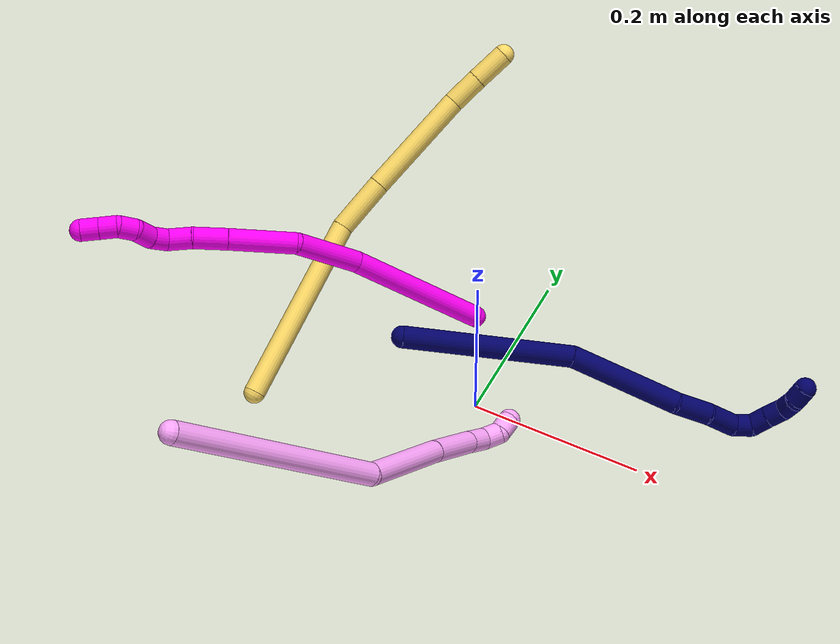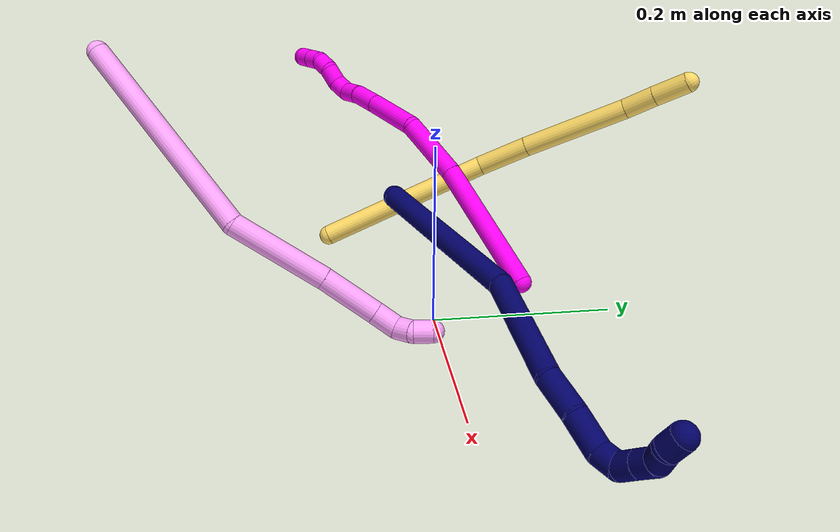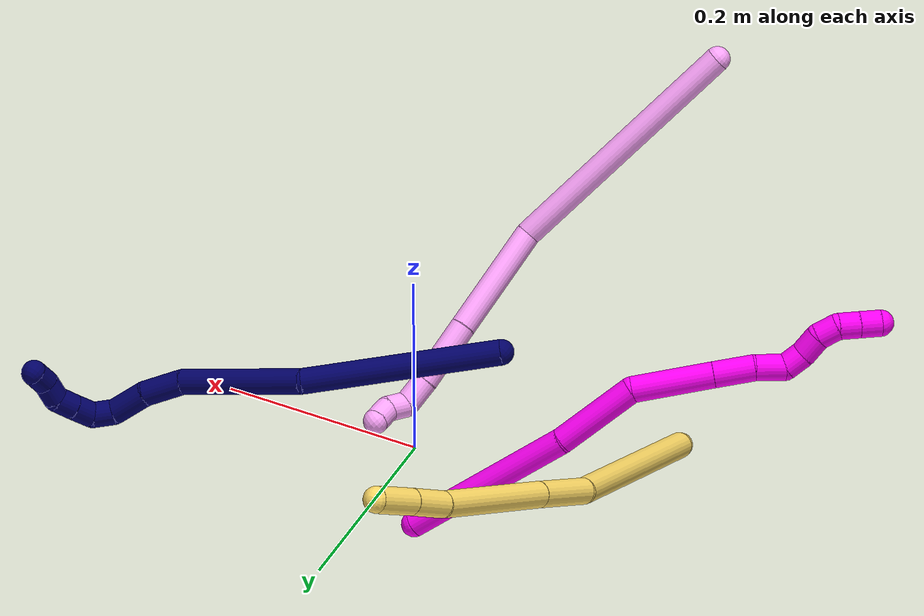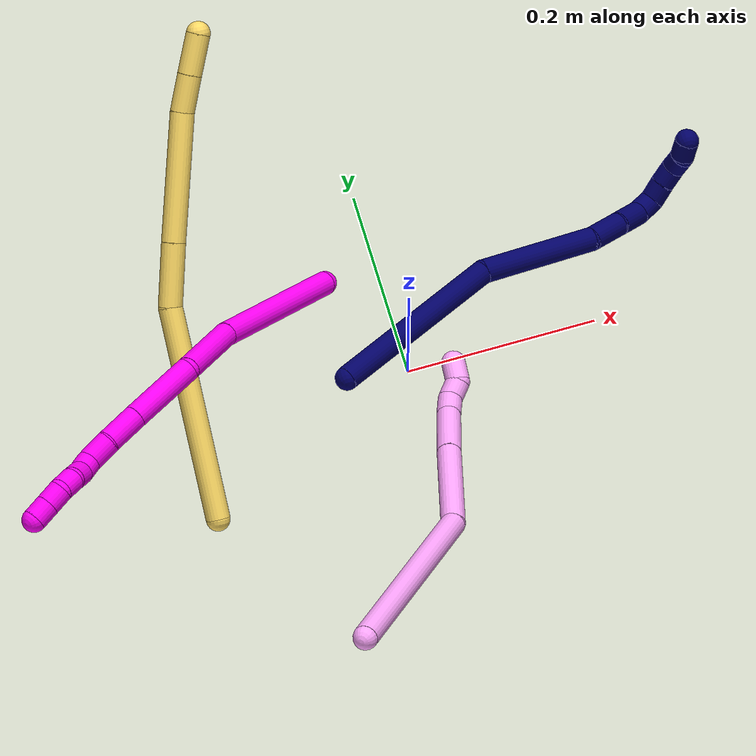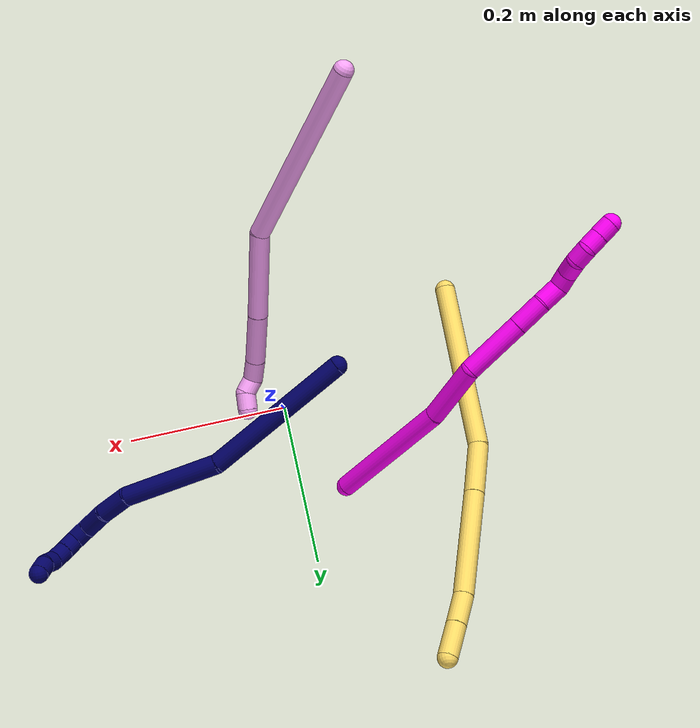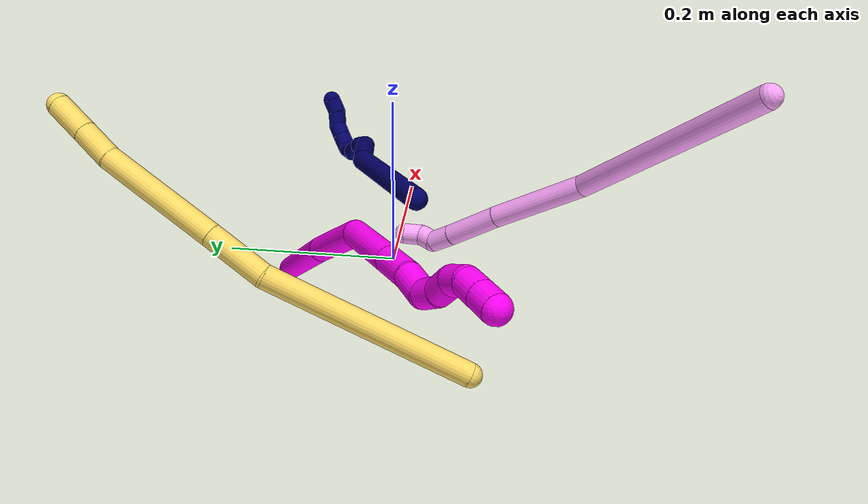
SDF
<sdf version="1.7">
 <world name="default">
  <model name="photoneo_s_sensor">
   <static>1</static>
   <pose>0 0 2 1.57079 1.57079 3.14159</pose>
   <link name="link">
    <inertial><mass>0.1</mass></inertial>
    <sensor name="sensor" type="depth">
     <update_rate>30</update_rate>
     <camera>
      <horizontal_fov>1.22</horizontal_fov>
      <image><width>1920</width><height>1200</height><format>B8G8R8</format></image>
      <clip><near>0.1</near><far>4</far></clip>
      <depth_camera><output>points</output></depth_camera>
     </camera>
     <plugin name="camera_plugin" filename="libgazebo_ros_depth_camera.so">
      <baseline>0.2</baseline>
      <alwaysOn>1</alwaysOn>
      <updateRate>0.0</updateRate>
      <cameraName>camera_ir</cameraName>
      <imageTopicName>/camera/color/image_raw</imageTopicName>
      <cameraInfoTopicName>/camera/color/camera_info</cameraInfoTopicName>
      <depthImageTopicName>/camera/depth/image_raw</depthImageTopicName>
      <depthImageCameraInfoTopicName>/camera/depth/camera_info</depthImageCameraInfoTopicName>
      <pointCloudTopicName>/camera/depth/points</pointCloudTopicName>
      <frameName>fr_optical</frameName>
      <pointCloudCutoff>0.1</pointCloudCutoff>
      <pointCloudCutoffMax>2.0</pointCloudCutoffMax>
      <distortionK1>0</distortionK1>
      <distortionK2>0</distortionK2>
      <distortionK3>0</distortionK3>
      <distortionT1>0</distortionT1>
      <distortionT2>0</distortionT2>
      <CxPrime>0</CxPrime>
      <Cx>0</Cx>
      <Cy>0</Cy>
      <focalLength>0</focalLength>
      <hackBaseline>0</hackBaseline>
     </plugin>
    </sensor>
   </link>
  </model>
  <model name="bin">
   <static>1</static>
   <link name="bottom">
    <collision name="collision-bottom">
     <pose>0 0 -0.01 0 -0 0</pose>
     <geometry><box><size>0.8 0.6 0.02</size></box></geometry>
     <surface>
      <friction><ode><mu>100</mu><mu2>100</mu2></ode></friction>
      <contact><collide_bitmask>65535</collide_bitmask></contact>
     </surface>
    </collision>
   </link>
   <link name="west_wall">
    <collision name="collision-west_wall">
     <pose>-0.41 0 0.1 0 -0 0</pose>
     <geometry><box><size>0.02 0.6 0.2</size></box></geometry>
     <surface>
      <friction><ode><mu>100</mu><mu2>100</mu2></ode></friction>
      <contact><collide_bitmask>65535</collide_bitmask></contact>
     </surface>
    </collision>
   </link>
   <link name="east_wall">
    <collision name="collision-east_wall">
     <pose>0.41 0 0.1 0 -0 0</pose>
     <geometry><box><size>0.02 0.6 0.2</size></box></geometry>
     <surface>
      <friction><ode><mu>100</mu><mu2>100</mu2></ode></friction>
      <contact><collide_bitmask>65535</collide_bitmask></contact>
     </surface>
    </collision>
   </link>
   <link name="south_wall">
    <collision name="collision-south_wall">
     <pose>0 -0.31 0.1 0 -0 0</pose>
     <geometry><box><size>0.8 0.02 0.2</size></box></geometry>
     <surface>
      <friction><ode><mu>100</mu><mu2>100</mu2></ode></friction>
      <contact><collide_bitmask>65535</collide_bitmask></contact>
     </surface>
    </collision>
   </link>
   <link name="north_wall">
    <collision name="collision-north_wall">
     <pose>0 0.31 0.1 0 -0 0</pose>
     <geometry><box><size>0.8 0.02 0.2</size></box></geometry>
     <surface>
      <friction><ode><mu>100</mu><mu2>100</mu2></ode></friction>
      <contact><collide_bitmask>65535</collide_bitmask></contact>
     </surface>
    </collision>
   </link>
  </model>
  <model name="4">
   <static>0</static>
   <link name="4">
    <collision name="collision-cylinder-e_1_1_4">
     <pose>-0.005483 -0.000521 -0.126102 3.13746 -0.043451 -2.95201</pose>
     <geometry><cylinder><radius>0.0125</radius><length>0.252445</length></cylinder></geometry>
     <surface>
      <friction><ode><mu>1.16</mu><mu2>1.16</mu2><slip1>0</slip1><slip2>0</slip2></ode></friction>
      <contact><ode><kp>1e+06</kp><kd>1</kd><max_vel>0</max_vel><min_depth>0.001</min_depth></ode></contact>
     </surface>
    </collision>
    <visual name="visual-cylinder-e_1_1_4">
     <pose>-0.005483 -0.000521 -0.126102 3.13746 -0.043451 -2.95201</pose>
     <geometry><cylinder><radius>0.0125</radius><length>0.252445</length></cylinder></geometry>
     <material><ambient>1 0.65098 0.996078 1</ambient></material>
    </visual>
    <collision name="collision-cylinder-e_2_4_5">
     <pose>-0.018392 0.021445 -0.303106 -2.7256 -0.132668 0.609894</pose>
     <geometry><cylinder><radius>0.0125</radius><length>0.11228</length></cylinder></geometry>
     <surface>
      <friction><ode><mu>1.16</mu><mu2>1.16</mu2><slip1>0</slip1><slip2>0</slip2></ode></friction>
      <contact><ode><kp>1e+06</kp><kd>1</kd><max_vel>0</max_vel><min_depth>0.001</min_depth></ode></contact>
     </surface>
    </collision>
    <visual name="visual-cylinder-e_2_4_5">
     <pose>-0.018392 0.021445 -0.303106 -2.7256 -0.132668 0.609894</pose>
     <geometry><cylinder><radius>0.0125</radius><length>0.11228</length></cylinder></geometry>
     <material><ambient>1 0.65098 0.996078 1</ambient></material>
    </visual>
    <collision name="collision-cylinder-e_3_5_6">
     <pose>-0.030745 0.055436 -0.384094 -2.7764 -0.151776 0.781223</pose>
     <geometry><cylinder><radius>0.0125</radius><length>0.065173</length></cylinder></geometry>
     <surface>
      <friction><ode><mu>1.16</mu><mu2>1.16</mu2><slip1>0</slip1><slip2>0</slip2></ode></friction>
      <contact><ode><kp>1e+06</kp><kd>1</kd><max_vel>0</max_vel><min_depth>0.001</min_depth></ode></contact>
     </surface>
    </collision>
    <visual name="visual-cylinder-e_3_5_6">
     <pose>-0.030745 0.055436 -0.384094 -2.7764 -0.151776 0.781223</pose>
     <geometry><cylinder><radius>0.0125</radius><length>0.065173</length></cylinder></geometry>
     <material><ambient>1 0.65098 0.996078 1</ambient></material>
    </visual>
    <collision name="collision-cylinder-e_4_6_7">
     <pose>-0.037119 0.071513 -0.427608 -2.81327 -0.101668 0.595982</pose>
     <geometry><cylinder><radius>0.0125</radius><length>0.028515</length></cylinder></geometry>
     <surface>
      <friction><ode><mu>1.16</mu><mu2>1.16</mu2><slip1>0</slip1><slip2>0</slip2></ode></friction>
      <contact><ode><kp>1e+06</kp><kd>1</kd><max_vel>0</max_vel><min_depth>0.001</min_depth></ode></contact>
     </surface>
    </collision>
    <visual name="visual-cylinder-e_4_6_7">
     <pose>-0.037119 0.071513 -0.427608 -2.81327 -0.101668 0.595982</pose>
     <geometry><cylinder><radius>0.0125</radius><length>0.028515</length></cylinder></geometry>
     <material><ambient>1 0.65098 0.996078 1</ambient></material>
    </visual>
    <collision name="collision-cylinder-e_5_7_8">
     <pose>-0.033024 0.079371 -0.448753 -2.73929 0.583867 -1.94927</pose>
     <geometry><cylinder><radius>0.0125</radius><length>0.020108</length></cylinder></geometry>
     <surface>
      <friction><ode><mu>1.16</mu><mu2>1.16</mu2><slip1>0</slip1><slip2>0</slip2></ode></friction>
      <contact><ode><kp>1e+06</kp><kd>1</kd><max_vel>0</max_vel><min_depth>0.001</min_depth></ode></contact>
     </surface>
    </collision>
    <visual name="visual-cylinder-e_5_7_8">
     <pose>-0.033024 0.079371 -0.448753 -2.73929 0.583867 -1.94927</pose>
     <geometry><cylinder><radius>0.0125</radius><length>0.020108</length></cylinder></geometry>
     <material><ambient>1 0.65098 0.996078 1</ambient></material>
    </visual>
    <collision name="collision-cylinder-e_6_8_2">
     <pose>-0.025759 0.090886 -0.463152 -2.2526 0.161044 -0.335672</pose>
     <geometry><cylinder><radius>0.0125</radius><length>0.021479</length></cylinder></geometry>
     <surface>
      <friction><ode><mu>1.16</mu><mu2>1.16</mu2><slip1>0</slip1><slip2>0</slip2></ode></friction>
      <contact><ode><kp>1e+06</kp><kd>1</kd><max_vel>0</max_vel><min_depth>0.001</min_depth></ode></contact>
     </surface>
    </collision>
    <visual name="visual-cylinder-e_6_8_2">
     <pose>-0.025759 0.090886 -0.463152 -2.2526 0.161044 -0.335672</pose>
     <geometry><cylinder><radius>0.0125</radius><length>0.021479</length></cylinder></geometry>
     <material><ambient>1 0.65098 0.996078 1</ambient></material>
    </visual>
    <collision name="collision-sphere-2">
     <pose>-0.024037 0.099117 -0.469832 0 -0 0</pose>
     <geometry><sphere><radius>0.0125</radius></sphere></geometry>
     <surface>
      <friction><ode><mu>1.16</mu><mu2>1.16</mu2><slip1>0</slip1><slip2>0</slip2></ode></friction>
      <contact><ode><kp>1e+06</kp><kd>1</kd><max_vel>0</max_vel><min_depth>0.001</min_depth></ode></contact>
     </surface>
    </collision>
    <visual name="visual-sphere-2">
     <pose>-0.024037 0.099117 -0.469832 0 -0 0</pose>
     <geometry><sphere><radius>0.0125</radius></sphere></geometry>
     <material><ambient>1 0.65098 0.996078 1</ambient></material>
    </visual>
    <collision name="collision-sphere-4">
     <pose>-0.010966 -0.001042 -0.252205 0 -0 0</pose>
     <geometry><sphere><radius>0.0125</radius></sphere></geometry>
     <surface>
      <friction><ode><mu>1.16</mu><mu2>1.16</mu2><slip1>0</slip1><slip2>0</slip2></ode></friction>
      <contact><ode><kp>1e+06</kp><kd>1</kd><max_vel>0</max_vel><min_depth>0.001</min_depth></ode></contact>
     </surface>
    </collision>
    <visual name="visual-sphere-4">
     <pose>-0.010966 -0.001042 -0.252205 0 -0 0</pose>
     <geometry><sphere><radius>0.0125</radius></sphere></geometry>
     <material><ambient>1 0.65098 0.996078 1</ambient></material>
    </visual>
    <collision name="collision-sphere-1">
     <geometry><sphere><radius>0.0125</radius></sphere></geometry>
     <surface>
      <friction><ode><mu>1.16</mu><mu2>1.16</mu2><slip1>0</slip1><slip2>0</slip2></ode></friction>
      <contact><ode><kp>1e+06</kp><kd>1</kd><max_vel>0</max_vel><min_depth>0.001</min_depth></ode></contact>
     </surface>
    </collision>
    <visual name="visual-sphere-1">
     <geometry><sphere><radius>0.0125</radius></sphere></geometry>
     <material><ambient>1 0.65098 0.996078 1</ambient></material>
    </visual>
    <collision name="collision-sphere-8">
     <pose>-0.027481 0.082655 -0.456472 0 -0 0</pose>
     <geometry><sphere><radius>0.0125</radius></sphere></geometry>
     <surface>
      <friction><ode><mu>1.16</mu><mu2>1.16</mu2><slip1>0</slip1><slip2>0</slip2></ode></friction>
      <contact><ode><kp>1e+06</kp><kd>1</kd><max_vel>0</max_vel><min_depth>0.001</min_depth></ode></contact>
     </surface>
    </collision>
    <visual name="visual-sphere-8">
     <pose>-0.027481 0.082655 -0.456472 0 -0 0</pose>
     <geometry><sphere><radius>0.0125</radius></sphere></geometry>
     <material><ambient>1 0.65098 0.996078 1</ambient></material>
    </visual>
    <collision name="collision-sphere-5">
     <pose>-0.025818 0.043932 -0.354006 0 -0 0</pose>
     <geometry><sphere><radius>0.0125</radius></sphere></geometry>
     <surface>
      <friction><ode><mu>1.16</mu><mu2>1.16</mu2><slip1>0</slip1><slip2>0</slip2></ode></friction>
      <contact><ode><kp>1e+06</kp><kd>1</kd><max_vel>0</max_vel><min_depth>0.001</min_depth></ode></contact>
     </surface>
    </collision>
    <visual name="visual-sphere-5">
     <pose>-0.025818 0.043932 -0.354006 0 -0 0</pose>
     <geometry><sphere><radius>0.0125</radius></sphere></geometry>
     <material><ambient>1 0.65098 0.996078 1</ambient></material>
    </visual>
    <collision name="collision-sphere-6">
     <pose>-0.035672 0.066939 -0.414182 0 -0 0</pose>
     <geometry><sphere><radius>0.0125</radius></sphere></geometry>
     <surface>
      <friction><ode><mu>1.16</mu><mu2>1.16</mu2><slip1>0</slip1><slip2>0</slip2></ode></friction>
      <contact><ode><kp>1e+06</kp><kd>1</kd><max_vel>0</max_vel><min_depth>0.001</min_depth></ode></contact>
     </surface>
    </collision>
    <visual name="visual-sphere-6">
     <pose>-0.035672 0.066939 -0.414182 0 -0 0</pose>
     <geometry><sphere><radius>0.0125</radius></sphere></geometry>
     <material><ambient>1 0.65098 0.996078 1</ambient></material>
    </visual>
    <collision name="collision-sphere-7">
     <pose>-0.038566 0.076087 -0.441034 0 -0 0</pose>
     <geometry><sphere><radius>0.0125</radius></sphere></geometry>
     <surface>
      <friction><ode><mu>1.16</mu><mu2>1.16</mu2><slip1>0</slip1><slip2>0</slip2></ode></friction>
      <contact><ode><kp>1e+06</kp><kd>1</kd><max_vel>0</max_vel><min_depth>0.001</min_depth></ode></contact>
     </surface>
    </collision>
    <visual name="visual-sphere-7">
     <pose>-0.038566 0.076087 -0.441034 0 -0 0</pose>
     <geometry><sphere><radius>0.0125</radius></sphere></geometry>
     <material><ambient>1 0.65098 0.996078 1</ambient></material>
    </visual>
    <inertial>
     <pose>-0.015457 0.022953 -0.244128 0 -0 0</pose>
     <mass>0.5</mass>
     <inertia>
      <ixx>-0.001373</ixx>
      <ixy>0</ixy>
      <ixz>0</ixz>
      <iyy>0.001061</iyy>
      <iyz>0</iyz>
      <izz>-1.4e-05</izz>
     </inertia>
    </inertial>
   </link>
   <pose>-0.149545 -0.356191 0.278467 0.496873 -0.81776 0.166486</pose>
  </model>
  <model name="5">
   <static>0</static>
   <link name="5">
    <collision name="collision-cylinder-e_1_1_4">
     <pose>0.002308 0.015967 0.109147 -0.14526 0.02092 -0.001522</pose>
     <geometry><cylinder><radius>0.0125</radius><length>0.220666</length></cylinder></geometry>
     <surface>
      <friction><ode><mu>1.16</mu><mu2>1.16</mu2><slip1>0</slip1><slip2>0</slip2></ode></friction>
      <contact><ode><kp>1e+06</kp><kd>1</kd><max_vel>0</max_vel><min_depth>0.001</min_depth></ode></contact>
     </surface>
    </collision>
    <visual name="visual-cylinder-e_1_1_4">
     <pose>0.002308 0.015967 0.109147 -0.14526 0.02092 -0.001522</pose>
     <geometry><cylinder><radius>0.0125</radius><length>0.220666</length></cylinder></geometry>
     <material><ambient>1 0.858824 0.4 1</ambient></material>
    </visual>
    <collision name="collision-cylinder-e_2_4_5">
     <pose>0.011823 0.03047 0.250419 0.045551 0.220478 0.005043</pose>
     <geometry><cylinder><radius>0.0125</radius><length>0.065912</length></cylinder></geometry>
     <surface>
      <friction><ode><mu>1.16</mu><mu2>1.16</mu2><slip1>0</slip1><slip2>0</slip2></ode></friction>
      <contact><ode><kp>1e+06</kp><kd>1</kd><max_vel>0</max_vel><min_depth>0.001</min_depth></ode></contact>
     </surface>
    </collision>
    <visual name="visual-cylinder-e_2_4_5">
     <pose>0.011823 0.03047 0.250419 0.045551 0.220478 0.005043</pose>
     <geometry><cylinder><radius>0.0125</radius><length>0.065912</length></cylinder></geometry>
     <material><ambient>1 0.858824 0.4 1</ambient></material>
    </visual>
    <collision name="collision-cylinder-e_3_5_6">
     <pose>0.035341 0.026884 0.346502 0.033154 0.249561 0.004159</pose>
     <geometry><cylinder><radius>0.0125</radius><length>0.132078</length></cylinder></geometry>
     <surface>
      <friction><ode><mu>1.16</mu><mu2>1.16</mu2><slip1>0</slip1><slip2>0</slip2></ode></friction>
      <contact><ode><kp>1e+06</kp><kd>1</kd><max_vel>0</max_vel><min_depth>0.001</min_depth></ode></contact>
     </surface>
    </collision>
    <visual name="visual-cylinder-e_3_5_6">
     <pose>0.035341 0.026884 0.346502 0.033154 0.249561 0.004159</pose>
     <geometry><cylinder><radius>0.0125</radius><length>0.132078</length></cylinder></geometry>
     <material><ambient>1 0.858824 0.4 1</ambient></material>
    </visual>
    <collision name="collision-cylinder-e_4_6_7">
     <pose>0.057473 0.02143 0.428778 0.180007 0.303067 0.02756</pose>
     <geometry><cylinder><radius>0.0125</radius><length>0.039016</length></cylinder></geometry>
     <surface>
      <friction><ode><mu>1.16</mu><mu2>1.16</mu2><slip1>0</slip1><slip2>0</slip2></ode></friction>
      <contact><ode><kp>1e+06</kp><kd>1</kd><max_vel>0</max_vel><min_depth>0.001</min_depth></ode></contact>
     </surface>
    </collision>
    <visual name="visual-cylinder-e_4_6_7">
     <pose>0.057473 0.02143 0.428778 0.180007 0.303067 0.02756</pose>
     <geometry><cylinder><radius>0.0125</radius><length>0.039016</length></cylinder></geometry>
     <material><ambient>1 0.858824 0.4 1</ambient></material>
    </visual>
    <collision name="collision-cylinder-e_5_7_2">
     <pose>0.070056 0.014714 0.466864 0.169484 0.325157 0.027865</pose>
     <geometry><cylinder><radius>0.0125</radius><length>0.042328</length></cylinder></geometry>
     <surface>
      <friction><ode><mu>1.16</mu><mu2>1.16</mu2><slip1>0</slip1><slip2>0</slip2></ode></friction>
      <contact><ode><kp>1e+06</kp><kd>1</kd><max_vel>0</max_vel><min_depth>0.001</min_depth></ode></contact>
     </surface>
    </collision>
    <visual name="visual-cylinder-e_5_7_2">
     <pose>0.070056 0.014714 0.466864 0.169484 0.325157 0.027865</pose>
     <geometry><cylinder><radius>0.0125</radius><length>0.042328</length></cylinder></geometry>
     <material><ambient>1 0.858824 0.4 1</ambient></material>
    </visual>
    <collision name="collision-sphere-2">
     <pose>0.076817 0.011331 0.486632 0 -0 0</pose>
     <geometry><sphere><radius>0.0125</radius></sphere></geometry>
     <surface>
      <friction><ode><mu>1.16</mu><mu2>1.16</mu2><slip1>0</slip1><slip2>0</slip2></ode></friction>
      <contact><ode><kp>1e+06</kp><kd>1</kd><max_vel>0</max_vel><min_depth>0.001</min_depth></ode></contact>
     </surface>
    </collision>
    <visual name="visual-sphere-2">
     <pose>0.076817 0.011331 0.486632 0 -0 0</pose>
     <geometry><sphere><radius>0.0125</radius></sphere></geometry>
     <material><ambient>1 0.858824 0.4 1</ambient></material>
    </visual>
    <collision name="collision-sphere-7">
     <pose>0.063295 0.018096 0.447096 0 -0 0</pose>
     <geometry><sphere><radius>0.0125</radius></sphere></geometry>
     <surface>
      <friction><ode><mu>1.16</mu><mu2>1.16</mu2><slip1>0</slip1><slip2>0</slip2></ode></friction>
      <contact><ode><kp>1e+06</kp><kd>1</kd><max_vel>0</max_vel><min_depth>0.001</min_depth></ode></contact>
     </surface>
    </collision>
    <visual name="visual-sphere-7">
     <pose>0.063295 0.018096 0.447096 0 -0 0</pose>
     <geometry><sphere><radius>0.0125</radius></sphere></geometry>
     <material><ambient>1 0.858824 0.4 1</ambient></material>
    </visual>
    <collision name="collision-sphere-6">
     <pose>0.051651 0.024763 0.41046 0 -0 0</pose>
     <geometry><sphere><radius>0.0125</radius></sphere></geometry>
     <surface>
      <friction><ode><mu>1.16</mu><mu2>1.16</mu2><slip1>0</slip1><slip2>0</slip2></ode></friction>
      <contact><ode><kp>1e+06</kp><kd>1</kd><max_vel>0</max_vel><min_depth>0.001</min_depth></ode></contact>
     </surface>
    </collision>
    <visual name="visual-sphere-6">
     <pose>0.051651 0.024763 0.41046 0 -0 0</pose>
     <geometry><sphere><radius>0.0125</radius></sphere></geometry>
     <material><ambient>1 0.858824 0.4 1</ambient></material>
    </visual>
    <collision name="collision-sphere-5">
     <pose>0.019031 0.029006 0.282544 0 -0 0</pose>
     <geometry><sphere><radius>0.0125</radius></sphere></geometry>
     <surface>
      <friction><ode><mu>1.16</mu><mu2>1.16</mu2><slip1>0</slip1><slip2>0</slip2></ode></friction>
      <contact><ode><kp>1e+06</kp><kd>1</kd><max_vel>0</max_vel><min_depth>0.001</min_depth></ode></contact>
     </surface>
    </collision>
    <visual name="visual-sphere-5">
     <pose>0.019031 0.029006 0.282544 0 -0 0</pose>
     <geometry><sphere><radius>0.0125</radius></sphere></geometry>
     <material><ambient>1 0.858824 0.4 1</ambient></material>
    </visual>
    <collision name="collision-sphere-1">
     <geometry><sphere><radius>0.0125</radius></sphere></geometry>
     <surface>
      <friction><ode><mu>1.16</mu><mu2>1.16</mu2><slip1>0</slip1><slip2>0</slip2></ode></friction>
      <contact><ode><kp>1e+06</kp><kd>1</kd><max_vel>0</max_vel><min_depth>0.001</min_depth></ode></contact>
     </surface>
    </collision>
    <visual name="visual-sphere-1">
     <geometry><sphere><radius>0.0125</radius></sphere></geometry>
     <material><ambient>1 0.858824 0.4 1</ambient></material>
    </visual>
    <collision name="collision-sphere-4">
     <pose>0.004616 0.031934 0.218294 0 -0 0</pose>
     <geometry><sphere><radius>0.0125</radius></sphere></geometry>
     <surface>
      <friction><ode><mu>1.16</mu><mu2>1.16</mu2><slip1>0</slip1><slip2>0</slip2></ode></friction>
      <contact><ode><kp>1e+06</kp><kd>1</kd><max_vel>0</max_vel><min_depth>0.001</min_depth></ode></contact>
     </surface>
    </collision>
    <visual name="visual-sphere-4">
     <pose>0.004616 0.031934 0.218294 0 -0 0</pose>
     <geometry><sphere><radius>0.0125</radius></sphere></geometry>
     <material><ambient>1 0.858824 0.4 1</ambient></material>
    </visual>
    <inertial>
     <pose>0.022328 0.021083 0.245693 0 -0 0</pose>
     <mass>0.5</mass>
     <inertia>
      <ixx>0.00114</ixx>
      <ixy>0</ixy>
      <ixz>0</ixz>
      <iyy>0.001133</iyy>
      <iyz>0</iyz>
      <izz>-0.000161</izz>
     </inertia>
    </inertial>
   </link>
   <pose>-0.231814 -0.104447 0.01149 -0.935418 0.451738 0.206304</pose>
  </model>
  <model name="7">
   <static>0</static>
   <link name="7">
    <collision name="collision-cylinder-e_1_1_4">
     <pose>0.071436 0.042609 0.048639 -0.719416 0.835122 -0.330641</pose>
     <geometry><cylinder><radius>0.0125</radius><length>0.192711</length></cylinder></geometry>
     <surface>
      <friction><ode><mu>1.16</mu><mu2>1.16</mu2><slip1>0</slip1><slip2>0</slip2></ode></friction>
      <contact><ode><kp>1e+06</kp><kd>1</kd><max_vel>0</max_vel><min_depth>0.001</min_depth></ode></contact>
     </surface>
    </collision>
    <visual name="visual-cylinder-e_1_1_4">
     <pose>0.071436 0.042609 0.048639 -0.719416 0.835122 -0.330641</pose>
     <geometry><cylinder><radius>0.0125</radius><length>0.192711</length></cylinder></geometry>
     <material><ambient>0.003922 0 0.403922 1</ambient></material>
    </visual>
    <collision name="collision-cylinder-e_2_4_5">
     <pose>0.191277 0.123834 0.110722 -1.23576 0.869373 -0.637471</pose>
     <geometry><cylinder><radius>0.0125</radius><length>0.126728</length></cylinder></geometry>
     <surface>
      <friction><ode><mu>1.16</mu><mu2>1.16</mu2><slip1>0</slip1><slip2>0</slip2></ode></friction>
      <contact><ode><kp>1e+06</kp><kd>1</kd><max_vel>0</max_vel><min_depth>0.001</min_depth></ode></contact>
     </surface>
    </collision>
    <visual name="visual-cylinder-e_2_4_5">
     <pose>0.191277 0.123834 0.110722 -1.23576 0.869373 -0.637471</pose>
     <geometry><cylinder><radius>0.0125</radius><length>0.126728</length></cylinder></geometry>
     <material><ambient>0.003922 0 0.403922 1</ambient></material>
    </visual>
    <collision name="collision-cylinder-e_3_5_6">
     <pose>0.251902 0.175326 0.133517 -0.94274 0.654847 -0.342834</pose>
     <geometry><cylinder><radius>0.0125</radius><length>0.040126</length></cylinder></geometry>
     <surface>
      <friction><ode><mu>1.16</mu><mu2>1.16</mu2><slip1>0</slip1><slip2>0</slip2></ode></friction>
      <contact><ode><kp>1e+06</kp><kd>1</kd><max_vel>0</max_vel><min_depth>0.001</min_depth></ode></contact>
     </surface>
    </collision>
    <visual name="visual-cylinder-e_3_5_6">
     <pose>0.251902 0.175326 0.133517 -0.94274 0.654847 -0.342834</pose>
     <geometry><cylinder><radius>0.0125</radius><length>0.040126</length></cylinder></geometry>
     <material><ambient>0.003922 0 0.403922 1</ambient></material>
    </visual>
    <collision name="collision-cylinder-e_4_6_7">
     <pose>0.271917 0.20203 0.152695 -0.952908 0.430787 -0.224885</pose>
     <geometry><cylinder><radius>0.0125</radius><length>0.037341</length></cylinder></geometry>
     <surface>
      <friction><ode><mu>1.16</mu><mu2>1.16</mu2><slip1>0</slip1><slip2>0</slip2></ode></friction>
      <contact><ode><kp>1e+06</kp><kd>1</kd><max_vel>0</max_vel><min_depth>0.001</min_depth></ode></contact>
     </surface>
    </collision>
    <visual name="visual-cylinder-e_4_6_7">
     <pose>0.271917 0.20203 0.152695 -0.952908 0.430787 -0.224885</pose>
     <geometry><cylinder><radius>0.0125</radius><length>0.037341</length></cylinder></geometry>
     <material><ambient>0.003922 0 0.403922 1</ambient></material>
    </visual>
    <collision name="collision-cylinder-e_5_7_8">
     <pose>0.287641 0.219824 0.168388 -0.594545 0.841751 -0.272559</pose>
     <geometry><cylinder><radius>0.0125</radius><length>0.021259</length></cylinder></geometry>
     <surface>
      <friction><ode><mu>1.16</mu><mu2>1.16</mu2><slip1>0</slip1><slip2>0</slip2></ode></friction>
      <contact><ode><kp>1e+06</kp><kd>1</kd><max_vel>0</max_vel><min_depth>0.001</min_depth></ode></contact>
     </surface>
    </collision>
    <visual name="visual-cylinder-e_5_7_8">
     <pose>0.287641 0.219824 0.168388 -0.594545 0.841751 -0.272559</pose>
     <geometry><cylinder><radius>0.0125</radius><length>0.021259</length></cylinder></geometry>
     <material><ambient>0.003922 0 0.403922 1</ambient></material>
    </visual>
    <collision name="collision-cylinder-e_6_8_9">
     <pose>0.30494 0.220309 0.178441 0.693709 1.04437 0.410178</pose>
     <geometry><cylinder><radius>0.0125</radius><length>0.021677</length></cylinder></geometry>
     <surface>
      <friction><ode><mu>1.16</mu><mu2>1.16</mu2><slip1>0</slip1><slip2>0</slip2></ode></friction>
      <contact><ode><kp>1e+06</kp><kd>1</kd><max_vel>0</max_vel><min_depth>0.001</min_depth></ode></contact>
     </surface>
    </collision>
    <visual name="visual-cylinder-e_6_8_9">
     <pose>0.30494 0.220309 0.178441 0.693709 1.04437 0.410178</pose>
     <geometry><cylinder><radius>0.0125</radius><length>0.021677</length></cylinder></geometry>
     <material><ambient>0.003922 0 0.403922 1</ambient></material>
    </visual>
    <collision name="collision-cylinder-e_7_9_10">
     <pose>0.323253 0.213774 0.186132 0.716684 1.09155 0.447275</pose>
     <geometry><cylinder><radius>0.0125</radius><length>0.020155</length></cylinder></geometry>
     <surface>
      <friction><ode><mu>1.16</mu><mu2>1.16</mu2><slip1>0</slip1><slip2>0</slip2></ode></friction>
      <contact><ode><kp>1e+06</kp><kd>1</kd><max_vel>0</max_vel><min_depth>0.001</min_depth></ode></contact>
     </surface>
    </collision>
    <visual name="visual-cylinder-e_7_9_10">
     <pose>0.323253 0.213774 0.186132 0.716684 1.09155 0.447275</pose>
     <geometry><cylinder><radius>0.0125</radius><length>0.020155</length></cylinder></geometry>
     <material><ambient>0.003922 0 0.403922 1</ambient></material>
    </visual>
    <collision name="collision-cylinder-e_8_10_11">
     <pose>0.340121 0.204658 0.188968 1.68056 0.914763 1.00479</pose>
     <geometry><cylinder><radius>0.0125</radius><length>0.020003</length></cylinder></geometry>
     <surface>
      <friction><ode><mu>1.16</mu><mu2>1.16</mu2><slip1>0</slip1><slip2>0</slip2></ode></friction>
      <contact><ode><kp>1e+06</kp><kd>1</kd><max_vel>0</max_vel><min_depth>0.001</min_depth></ode></contact>
     </surface>
    </collision>
    <visual name="visual-cylinder-e_8_10_11">
     <pose>0.340121 0.204658 0.188968 1.68056 0.914763 1.00479</pose>
     <geometry><cylinder><radius>0.0125</radius><length>0.020003</length></cylinder></geometry>
     <material><ambient>0.003922 0 0.403922 1</ambient></material>
    </visual>
    <collision name="collision-cylinder-e_9_11_2">
     <pose>0.355002 0.192019 0.191196 1.15585 0.769171 0.516171</pose>
     <geometry><cylinder><radius>0.0125</radius><length>0.02</length></cylinder></geometry>
     <surface>
      <friction><ode><mu>1.16</mu><mu2>1.16</mu2><slip1>0</slip1><slip2>0</slip2></ode></friction>
      <contact><ode><kp>1e+06</kp><kd>1</kd><max_vel>0</max_vel><min_depth>0.001</min_depth></ode></contact>
     </surface>
    </collision>
    <visual name="visual-cylinder-e_9_11_2">
     <pose>0.355002 0.192019 0.191196 1.15585 0.769171 0.516171</pose>
     <geometry><cylinder><radius>0.0125</radius><length>0.02</length></cylinder></geometry>
     <material><ambient>0.003922 0 0.403922 1</ambient></material>
    </visual>
    <collision name="collision-sphere-2">
     <pose>0.361957 0.185443 0.194092 0 -0 0</pose>
     <geometry><sphere><radius>0.0125</radius></sphere></geometry>
     <surface>
      <friction><ode><mu>1.16</mu><mu2>1.16</mu2><slip1>0</slip1><slip2>0</slip2></ode></friction>
      <contact><ode><kp>1e+06</kp><kd>1</kd><max_vel>0</max_vel><min_depth>0.001</min_depth></ode></contact>
     </surface>
    </collision>
    <visual name="visual-sphere-2">
     <pose>0.361957 0.185443 0.194092 0 -0 0</pose>
     <geometry><sphere><radius>0.0125</radius></sphere></geometry>
     <material><ambient>0.003922 0 0.403922 1</ambient></material>
    </visual>
    <collision name="collision-sphere-11">
     <pose>0.348046 0.198594 0.188299 0 -0 0</pose>
     <geometry><sphere><radius>0.0125</radius></sphere></geometry>
     <surface>
      <friction><ode><mu>1.16</mu><mu2>1.16</mu2><slip1>0</slip1><slip2>0</slip2></ode></friction>
      <contact><ode><kp>1e+06</kp><kd>1</kd><max_vel>0</max_vel><min_depth>0.001</min_depth></ode></contact>
     </surface>
    </collision>
    <visual name="visual-sphere-11">
     <pose>0.348046 0.198594 0.188299 0 -0 0</pose>
     <geometry><sphere><radius>0.0125</radius></sphere></geometry>
     <material><ambient>0.003922 0 0.403922 1</ambient></material>
    </visual>
    <collision name="collision-sphere-10">
     <pose>0.332196 0.210721 0.189636 0 -0 0</pose>
     <geometry><sphere><radius>0.0125</radius></sphere></geometry>
     <surface>
      <friction><ode><mu>1.16</mu><mu2>1.16</mu2><slip1>0</slip1><slip2>0</slip2></ode></friction>
      <contact><ode><kp>1e+06</kp><kd>1</kd><max_vel>0</max_vel><min_depth>0.001</min_depth></ode></contact>
     </surface>
    </collision>
    <visual name="visual-sphere-10">
     <pose>0.332196 0.210721 0.189636 0 -0 0</pose>
     <geometry><sphere><radius>0.0125</radius></sphere></geometry>
     <material><ambient>0.003922 0 0.403922 1</ambient></material>
    </visual>
    <collision name="collision-sphere-9">
     <pose>0.314311 0.216826 0.182628 0 -0 0</pose>
     <geometry><sphere><radius>0.0125</radius></sphere></geometry>
     <surface>
      <friction><ode><mu>1.16</mu><mu2>1.16</mu2><slip1>0</slip1><slip2>0</slip2></ode></friction>
      <contact><ode><kp>1e+06</kp><kd>1</kd><max_vel>0</max_vel><min_depth>0.001</min_depth></ode></contact>
     </surface>
    </collision>
    <visual name="visual-sphere-9">
     <pose>0.314311 0.216826 0.182628 0 -0 0</pose>
     <geometry><sphere><radius>0.0125</radius></sphere></geometry>
     <material><ambient>0.003922 0 0.403922 1</ambient></material>
    </visual>
    <collision name="collision-sphere-4">
     <pose>0.142872 0.085218 0.097278 0 -0 0</pose>
     <geometry><sphere><radius>0.0125</radius></sphere></geometry>
     <surface>
      <friction><ode><mu>1.16</mu><mu2>1.16</mu2><slip1>0</slip1><slip2>0</slip2></ode></friction>
      <contact><ode><kp>1e+06</kp><kd>1</kd><max_vel>0</max_vel><min_depth>0.001</min_depth></ode></contact>
     </surface>
    </collision>
    <visual name="visual-sphere-4">
     <pose>0.142872 0.085218 0.097278 0 -0 0</pose>
     <geometry><sphere><radius>0.0125</radius></sphere></geometry>
     <material><ambient>0.003922 0 0.403922 1</ambient></material>
    </visual>
    <collision name="collision-sphere-1">
     <geometry><sphere><radius>0.0125</radius></sphere></geometry>
     <surface>
      <friction><ode><mu>1.16</mu><mu2>1.16</mu2><slip1>0</slip1><slip2>0</slip2></ode></friction>
      <contact><ode><kp>1e+06</kp><kd>1</kd><max_vel>0</max_vel><min_depth>0.001</min_depth></ode></contact>
     </surface>
    </collision>
    <visual name="visual-sphere-1">
     <geometry><sphere><radius>0.0125</radius></sphere></geometry>
     <material><ambient>0.003922 0 0.403922 1</ambient></material>
    </visual>
    <collision name="collision-sphere-8">
     <pose>0.295569 0.223791 0.174254 0 -0 0</pose>
     <geometry><sphere><radius>0.0125</radius></sphere></geometry>
     <surface>
      <friction><ode><mu>1.16</mu><mu2>1.16</mu2><slip1>0</slip1><slip2>0</slip2></ode></friction>
      <contact><ode><kp>1e+06</kp><kd>1</kd><max_vel>0</max_vel><min_depth>0.001</min_depth></ode></contact>
     </surface>
    </collision>
    <visual name="visual-sphere-8">
     <pose>0.295569 0.223791 0.174254 0 -0 0</pose>
     <geometry><sphere><radius>0.0125</radius></sphere></geometry>
     <material><ambient>0.003922 0 0.403922 1</ambient></material>
    </visual>
    <collision name="collision-sphere-5">
     <pose>0.239683 0.16245 0.124167 0 -0 0</pose>
     <geometry><sphere><radius>0.0125</radius></sphere></geometry>
     <surface>
      <friction><ode><mu>1.16</mu><mu2>1.16</mu2><slip1>0</slip1><slip2>0</slip2></ode></friction>
      <contact><ode><kp>1e+06</kp><kd>1</kd><max_vel>0</max_vel><min_depth>0.001</min_depth></ode></contact>
     </surface>
    </collision>
    <visual name="visual-sphere-5">
     <pose>0.239683 0.16245 0.124167 0 -0 0</pose>
     <geometry><sphere><radius>0.0125</radius></sphere></geometry>
     <material><ambient>0.003922 0 0.403922 1</ambient></material>
    </visual>
    <collision name="collision-sphere-6">
     <pose>0.264121 0.188202 0.142867 0 -0 0</pose>
     <geometry><sphere><radius>0.0125</radius></sphere></geometry>
     <surface>
      <friction><ode><mu>1.16</mu><mu2>1.16</mu2><slip1>0</slip1><slip2>0</slip2></ode></friction>
      <contact><ode><kp>1e+06</kp><kd>1</kd><max_vel>0</max_vel><min_depth>0.001</min_depth></ode></contact>
     </surface>
    </collision>
    <visual name="visual-sphere-6">
     <pose>0.264121 0.188202 0.142867 0 -0 0</pose>
     <geometry><sphere><radius>0.0125</radius></sphere></geometry>
     <material><ambient>0.003922 0 0.403922 1</ambient></material>
    </visual>
    <collision name="collision-sphere-7">
     <pose>0.279714 0.215858 0.162523 0 -0 0</pose>
     <geometry><sphere><radius>0.0125</radius></sphere></geometry>
     <surface>
      <friction><ode><mu>1.16</mu><mu2>1.16</mu2><slip1>0</slip1><slip2>0</slip2></ode></friction>
      <contact><ode><kp>1e+06</kp><kd>1</kd><max_vel>0</max_vel><min_depth>0.001</min_depth></ode></contact>
     </surface>
    </collision>
    <visual name="visual-sphere-7">
     <pose>0.279714 0.215858 0.162523 0 -0 0</pose>
     <geometry><sphere><radius>0.0125</radius></sphere></geometry>
     <material><ambient>0.003922 0 0.403922 1</ambient></material>
    </visual>
    <inertial>
     <pose>0.182824 0.120351 0.106535 0 -0 0</pose>
     <mass>0.5</mass>
     <inertia>
      <ixx>0.000316</ixx>
      <ixy>0</ixy>
      <ixz>0</ixz>
      <iyy>0.000476</iyy>
      <iyz>0</iyz>
      <izz>-0.000959</izz>
     </inertia>
    </inertial>
   </link>
   <pose>-0.07489 -0.034476 0.120012 -1.78853 -0.435057 0.053281</pose>
  </model>
  <model name="10">
   <static>0</static>
   <link name="10">
    <collision name="collision-cylinder-e_1_1_4">
     <pose>-0.004871 0.021014 0.082036 -0.250766 -0.057452 0.007243</pose>
     <geometry><cylinder><radius>0.0125</radius><length>0.169649</length></cylinder></geometry>
     <surface>
      <friction><ode><mu>1.16</mu><mu2>1.16</mu2><slip1>0</slip1><slip2>0</slip2></ode></friction>
      <contact><ode><kp>1e+06</kp><kd>1</kd><max_vel>0</max_vel><min_depth>0.001</min_depth></ode></contact>
     </surface>
    </collision>
    <visual name="visual-cylinder-e_1_1_4">
     <pose>-0.004871 0.021014 0.082036 -0.250766 -0.057452 0.007243</pose>
     <geometry><cylinder><radius>0.0125</radius><length>0.169649</length></cylinder></geometry>
     <material><ambient>1 0 0.964706 1</ambient></material>
    </visual>
    <collision name="collision-cylinder-e_2_4_5">
     <pose>-0.004568 0.053204 0.20314 -0.278615 0.12663 -0.017779</pose>
     <geometry><cylinder><radius>0.0125</radius><length>0.081926</length></cylinder></geometry>
     <surface>
      <friction><ode><mu>1.16</mu><mu2>1.16</mu2><slip1>0</slip1><slip2>0</slip2></ode></friction>
      <contact><ode><kp>1e+06</kp><kd>1</kd><max_vel>0</max_vel><min_depth>0.001</min_depth></ode></contact>
     </surface>
    </collision>
    <visual name="visual-cylinder-e_2_4_5">
     <pose>-0.004568 0.053204 0.20314 -0.278615 0.12663 -0.017779</pose>
     <geometry><cylinder><radius>0.0125</radius><length>0.081926</length></cylinder></geometry>
     <material><ambient>1 0 0.964706 1</ambient></material>
    </visual>
    <collision name="collision-cylinder-e_3_5_6">
     <pose>0.002096 0.056789 0.280062 0.197914 0.038594 0.003832</pose>
     <geometry><cylinder><radius>0.0125</radius><length>0.077272</length></cylinder></geometry>
     <surface>
      <friction><ode><mu>1.16</mu><mu2>1.16</mu2><slip1>0</slip1><slip2>0</slip2></ode></friction>
      <contact><ode><kp>1e+06</kp><kd>1</kd><max_vel>0</max_vel><min_depth>0.001</min_depth></ode></contact>
     </surface>
    </collision>
    <visual name="visual-cylinder-e_3_5_6">
     <pose>0.002096 0.056789 0.280062 0.197914 0.038594 0.003832</pose>
     <geometry><cylinder><radius>0.0125</radius><length>0.077272</length></cylinder></geometry>
     <material><ambient>1 0 0.964706 1</ambient></material>
    </visual>
    <collision name="collision-cylinder-e_4_6_7">
     <pose>0.00456 0.045064 0.336834 0.215134 0.05023 0.005425</pose>
     <geometry><cylinder><radius>0.0125</radius><length>0.038777</length></cylinder></geometry>
     <surface>
      <friction><ode><mu>1.16</mu><mu2>1.16</mu2><slip1>0</slip1><slip2>0</slip2></ode></friction>
      <contact><ode><kp>1e+06</kp><kd>1</kd><max_vel>0</max_vel><min_depth>0.001</min_depth></ode></contact>
     </surface>
    </collision>
    <visual name="visual-cylinder-e_4_6_7">
     <pose>0.00456 0.045064 0.336834 0.215134 0.05023 0.005425</pose>
     <geometry><cylinder><radius>0.0125</radius><length>0.038777</length></cylinder></geometry>
     <material><ambient>1 0 0.964706 1</ambient></material>
    </visual>
    <collision name="collision-cylinder-e_5_7_8">
     <pose>0.006268 0.035239 0.368843 0.410067 0.051369 0.010685</pose>
     <geometry><cylinder><radius>0.0125</radius><length>0.028587</length></cylinder></geometry>
     <surface>
      <friction><ode><mu>1.16</mu><mu2>1.16</mu2><slip1>0</slip1><slip2>0</slip2></ode></friction>
      <contact><ode><kp>1e+06</kp><kd>1</kd><max_vel>0</max_vel><min_depth>0.001</min_depth></ode></contact>
     </surface>
    </collision>
    <visual name="visual-cylinder-e_5_7_8">
     <pose>0.006268 0.035239 0.368843 0.410067 0.051369 0.010685</pose>
     <geometry><cylinder><radius>0.0125</radius><length>0.028587</length></cylinder></geometry>
     <material><ambient>1 0 0.964706 1</ambient></material>
    </visual>
    <collision name="collision-cylinder-e_6_8_9">
     <pose>0.0095 0.031703 0.39164 -0.218441 0.246169 -0.02713</pose>
     <geometry><cylinder><radius>0.0125</radius><length>0.020503</length></cylinder></geometry>
     <surface>
      <friction><ode><mu>1.16</mu><mu2>1.16</mu2><slip1>0</slip1><slip2>0</slip2></ode></friction>
      <contact><ode><kp>1e+06</kp><kd>1</kd><max_vel>0</max_vel><min_depth>0.001</min_depth></ode></contact>
     </surface>
    </collision>
    <visual name="visual-cylinder-e_6_8_9">
     <pose>0.0095 0.031703 0.39164 -0.218441 0.246169 -0.02713</pose>
     <geometry><cylinder><radius>0.0125</radius><length>0.020503</length></cylinder></geometry>
     <material><ambient>1 0 0.964706 1</ambient></material>
    </visual>
    <collision name="collision-cylinder-e_7_9_10">
     <pose>0.013439 0.039506 0.411036 -0.527861 0.127755 -0.034567</pose>
     <geometry><cylinder><radius>0.0125</radius><length>0.022616</length></cylinder></geometry>
     <surface>
      <friction><ode><mu>1.16</mu><mu2>1.16</mu2><slip1>0</slip1><slip2>0</slip2></ode></friction>
      <contact><ode><kp>1e+06</kp><kd>1</kd><max_vel>0</max_vel><min_depth>0.001</min_depth></ode></contact>
     </surface>
    </collision>
    <visual name="visual-cylinder-e_7_9_10">
     <pose>0.013439 0.039506 0.411036 -0.527861 0.127755 -0.034567</pose>
     <geometry><cylinder><radius>0.0125</radius><length>0.022616</length></cylinder></geometry>
     <material><ambient>1 0 0.964706 1</ambient></material>
    </visual>
    <collision name="collision-cylinder-e_8_10_11">
     <pose>0.015937 0.046218 0.430817 -0.104923 0.103841 -0.005458</pose>
     <geometry><cylinder><radius>0.0125</radius><length>0.020406</length></cylinder></geometry>
     <surface>
      <friction><ode><mu>1.16</mu><mu2>1.16</mu2><slip1>0</slip1><slip2>0</slip2></ode></friction>
      <contact><ode><kp>1e+06</kp><kd>1</kd><max_vel>0</max_vel><min_depth>0.001</min_depth></ode></contact>
     </surface>
    </collision>
    <visual name="visual-cylinder-e_8_10_11">
     <pose>0.015937 0.046218 0.430817 -0.104923 0.103841 -0.005458</pose>
     <geometry><cylinder><radius>0.0125</radius><length>0.020406</length></cylinder></geometry>
     <material><ambient>1 0 0.964706 1</ambient></material>
    </visual>
    <collision name="collision-cylinder-e_9_11_12">
     <pose>0.018156 0.043679 0.450229 0.368843 0.115746 0.021615</pose>
     <geometry><cylinder><radius>0.0125</radius><length>0.020119</length></cylinder></geometry>
     <surface>
      <friction><ode><mu>1.16</mu><mu2>1.16</mu2><slip1>0</slip1><slip2>0</slip2></ode></friction>
      <contact><ode><kp>1e+06</kp><kd>1</kd><max_vel>0</max_vel><min_depth>0.001</min_depth></ode></contact>
     </surface>
    </collision>
    <visual name="visual-cylinder-e_9_11_12">
     <pose>0.018156 0.043679 0.450229 0.368843 0.115746 0.021615</pose>
     <geometry><cylinder><radius>0.0125</radius><length>0.020119</length></cylinder></geometry>
     <material><ambient>1 0 0.964706 1</ambient></material>
    </visual>
    <collision name="collision-cylinder-e_10_12_2">
     <pose>0.020432 0.036484 0.468893 0.367027 0.110819 0.020589</pose>
     <geometry><cylinder><radius>0.0125</radius><length>0.020144</length></cylinder></geometry>
     <surface>
      <friction><ode><mu>1.16</mu><mu2>1.16</mu2><slip1>0</slip1><slip2>0</slip2></ode></friction>
      <contact><ode><kp>1e+06</kp><kd>1</kd><max_vel>0</max_vel><min_depth>0.001</min_depth></ode></contact>
     </surface>
    </collision>
    <visual name="visual-cylinder-e_10_12_2">
     <pose>0.020432 0.036484 0.468893 0.367027 0.110819 0.020589</pose>
     <geometry><cylinder><radius>0.0125</radius><length>0.020144</length></cylinder></geometry>
     <material><ambient>1 0 0.964706 1</ambient></material>
    </visual>
    <collision name="collision-sphere-2">
     <pose>0.021546 0.032892 0.478236 0 -0 0</pose>
     <geometry><sphere><radius>0.0125</radius></sphere></geometry>
     <surface>
      <friction><ode><mu>1.16</mu><mu2>1.16</mu2><slip1>0</slip1><slip2>0</slip2></ode></friction>
      <contact><ode><kp>1e+06</kp><kd>1</kd><max_vel>0</max_vel><min_depth>0.001</min_depth></ode></contact>
     </surface>
    </collision>
    <visual name="visual-sphere-2">
     <pose>0.021546 0.032892 0.478236 0 -0 0</pose>
     <geometry><sphere><radius>0.0125</radius></sphere></geometry>
     <material><ambient>1 0 0.964706 1</ambient></material>
    </visual>
    <collision name="collision-sphere-12">
     <pose>0.019318 0.040076 0.459549 0 -0 0</pose>
     <geometry><sphere><radius>0.0125</radius></sphere></geometry>
     <surface>
      <friction><ode><mu>1.16</mu><mu2>1.16</mu2><slip1>0</slip1><slip2>0</slip2></ode></friction>
      <contact><ode><kp>1e+06</kp><kd>1</kd><max_vel>0</max_vel><min_depth>0.001</min_depth></ode></contact>
     </surface>
    </collision>
    <visual name="visual-sphere-12">
     <pose>0.019318 0.040076 0.459549 0 -0 0</pose>
     <geometry><sphere><radius>0.0125</radius></sphere></geometry>
     <material><ambient>1 0 0.964706 1</ambient></material>
    </visual>
    <collision name="collision-sphere-11">
     <pose>0.016995 0.047281 0.440909 0 -0 0</pose>
     <geometry><sphere><radius>0.0125</radius></sphere></geometry>
     <surface>
      <friction><ode><mu>1.16</mu><mu2>1.16</mu2><slip1>0</slip1><slip2>0</slip2></ode></friction>
      <contact><ode><kp>1e+06</kp><kd>1</kd><max_vel>0</max_vel><min_depth>0.001</min_depth></ode></contact>
     </surface>
    </collision>
    <visual name="visual-sphere-11">
     <pose>0.016995 0.047281 0.440909 0 -0 0</pose>
     <geometry><sphere><radius>0.0125</radius></sphere></geometry>
     <material><ambient>1 0 0.964706 1</ambient></material>
    </visual>
    <collision name="collision-sphere-10">
     <pose>0.014879 0.045156 0.420725 0 -0 0</pose>
     <geometry><sphere><radius>0.0125</radius></sphere></geometry>
     <surface>
      <friction><ode><mu>1.16</mu><mu2>1.16</mu2><slip1>0</slip1><slip2>0</slip2></ode></friction>
      <contact><ode><kp>1e+06</kp><kd>1</kd><max_vel>0</max_vel><min_depth>0.001</min_depth></ode></contact>
     </surface>
    </collision>
    <visual name="visual-sphere-10">
     <pose>0.014879 0.045156 0.420725 0 -0 0</pose>
     <geometry><sphere><radius>0.0125</radius></sphere></geometry>
     <material><ambient>1 0 0.964706 1</ambient></material>
    </visual>
    <collision name="collision-sphere-9">
     <pose>0.011998 0.033857 0.401346 0 -0 0</pose>
     <geometry><sphere><radius>0.0125</radius></sphere></geometry>
     <surface>
      <friction><ode><mu>1.16</mu><mu2>1.16</mu2><slip1>0</slip1><slip2>0</slip2></ode></friction>
      <contact><ode><kp>1e+06</kp><kd>1</kd><max_vel>0</max_vel><min_depth>0.001</min_depth></ode></contact>
     </surface>
    </collision>
    <visual name="visual-sphere-9">
     <pose>0.011998 0.033857 0.401346 0 -0 0</pose>
     <geometry><sphere><radius>0.0125</radius></sphere></geometry>
     <material><ambient>1 0 0.964706 1</ambient></material>
    </visual>
    <collision name="collision-sphere-4">
     <pose>-0.009741 0.042028 0.164072 0 -0 0</pose>
     <geometry><sphere><radius>0.0125</radius></sphere></geometry>
     <surface>
      <friction><ode><mu>1.16</mu><mu2>1.16</mu2><slip1>0</slip1><slip2>0</slip2></ode></friction>
      <contact><ode><kp>1e+06</kp><kd>1</kd><max_vel>0</max_vel><min_depth>0.001</min_depth></ode></contact>
     </surface>
    </collision>
    <visual name="visual-sphere-4">
     <pose>-0.009741 0.042028 0.164072 0 -0 0</pose>
     <geometry><sphere><radius>0.0125</radius></sphere></geometry>
     <material><ambient>1 0 0.964706 1</ambient></material>
    </visual>
    <collision name="collision-sphere-1">
     <geometry><sphere><radius>0.0125</radius></sphere></geometry>
     <surface>
      <friction><ode><mu>1.16</mu><mu2>1.16</mu2><slip1>0</slip1><slip2>0</slip2></ode></friction>
      <contact><ode><kp>1e+06</kp><kd>1</kd><max_vel>0</max_vel><min_depth>0.001</min_depth></ode></contact>
     </surface>
    </collision>
    <visual name="visual-sphere-1">
     <geometry><sphere><radius>0.0125</radius></sphere></geometry>
     <material><ambient>1 0 0.964706 1</ambient></material>
    </visual>
    <collision name="collision-sphere-8">
     <pose>0.007002 0.029548 0.381934 0 -0 0</pose>
     <geometry><sphere><radius>0.0125</radius></sphere></geometry>
     <surface>
      <friction><ode><mu>1.16</mu><mu2>1.16</mu2><slip1>0</slip1><slip2>0</slip2></ode></friction>
      <contact><ode><kp>1e+06</kp><kd>1</kd><max_vel>0</max_vel><min_depth>0.001</min_depth></ode></contact>
     </surface>
    </collision>
    <visual name="visual-sphere-8">
     <pose>0.007002 0.029548 0.381934 0 -0 0</pose>
     <geometry><sphere><radius>0.0125</radius></sphere></geometry>
     <material><ambient>1 0 0.964706 1</ambient></material>
    </visual>
    <collision name="collision-sphere-5">
     <pose>0.000605 0.06438 0.242209 0 -0 0</pose>
     <geometry><sphere><radius>0.0125</radius></sphere></geometry>
     <surface>
      <friction><ode><mu>1.16</mu><mu2>1.16</mu2><slip1>0</slip1><slip2>0</slip2></ode></friction>
      <contact><ode><kp>1e+06</kp><kd>1</kd><max_vel>0</max_vel><min_depth>0.001</min_depth></ode></contact>
     </surface>
    </collision>
    <visual name="visual-sphere-5">
     <pose>0.000605 0.06438 0.242209 0 -0 0</pose>
     <geometry><sphere><radius>0.0125</radius></sphere></geometry>
     <material><ambient>1 0 0.964706 1</ambient></material>
    </visual>
    <collision name="collision-sphere-6">
     <pose>0.003587 0.049197 0.317916 0 -0 0</pose>
     <geometry><sphere><radius>0.0125</radius></sphere></geometry>
     <surface>
      <friction><ode><mu>1.16</mu><mu2>1.16</mu2><slip1>0</slip1><slip2>0</slip2></ode></friction>
      <contact><ode><kp>1e+06</kp><kd>1</kd><max_vel>0</max_vel><min_depth>0.001</min_depth></ode></contact>
     </surface>
    </collision>
    <visual name="visual-sphere-6">
     <pose>0.003587 0.049197 0.317916 0 -0 0</pose>
     <geometry><sphere><radius>0.0125</radius></sphere></geometry>
     <material><ambient>1 0 0.964706 1</ambient></material>
    </visual>
    <collision name="collision-sphere-7">
     <pose>0.005534 0.04093 0.355751 0 -0 0</pose>
     <geometry><sphere><radius>0.0125</radius></sphere></geometry>
     <surface>
      <friction><ode><mu>1.16</mu><mu2>1.16</mu2><slip1>0</slip1><slip2>0</slip2></ode></friction>
      <contact><ode><kp>1e+06</kp><kd>1</kd><max_vel>0</max_vel><min_depth>0.001</min_depth></ode></contact>
     </surface>
    </collision>
    <visual name="visual-sphere-7">
     <pose>0.005534 0.04093 0.355751 0 -0 0</pose>
     <geometry><sphere><radius>0.0125</radius></sphere></geometry>
     <material><ambient>1 0 0.964706 1</ambient></material>
    </visual>
    <inertial>
     <pose>0.001836 0.038334 0.240854 0 -0 0</pose>
     <mass>0.5</mass>
     <inertia>
      <ixx>0.000524</ixx>
      <ixy>0</ixy>
      <ixz>0</ixz>
      <iyy>0.00051</iyy>
      <iyz>0</iyz>
      <izz>-5.4e-05</izz>
     </inertia>
    </inertial>
   </link>
   <pose>-0.056385 0.113042 0.012319 1.20206 0.096982 -1.08401</pose>
  </model>
 </world>
</sdf>
